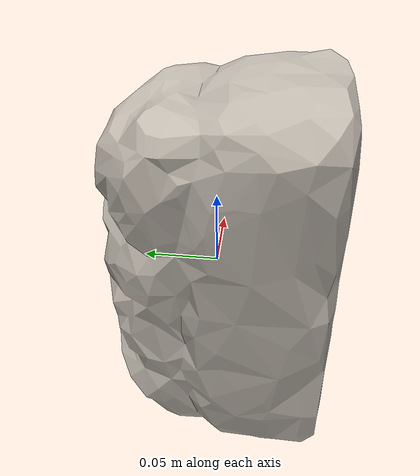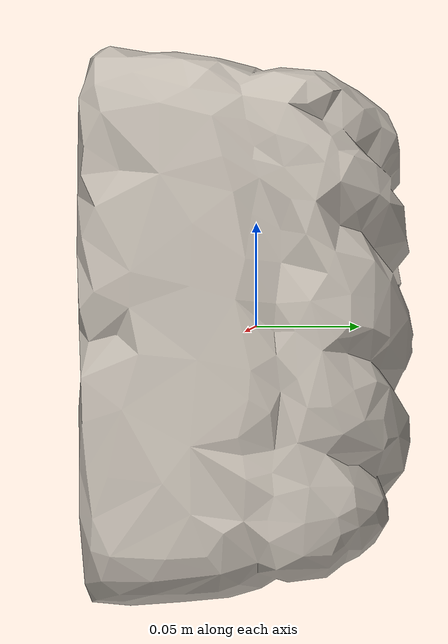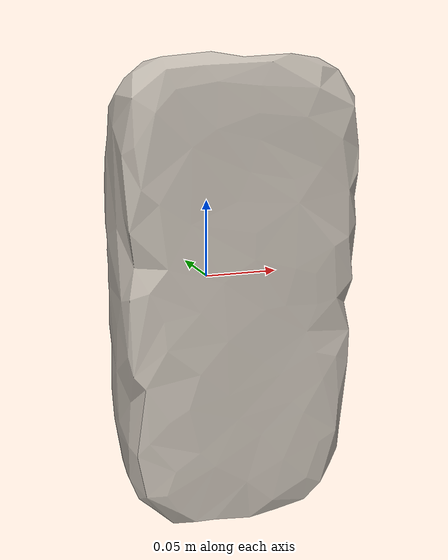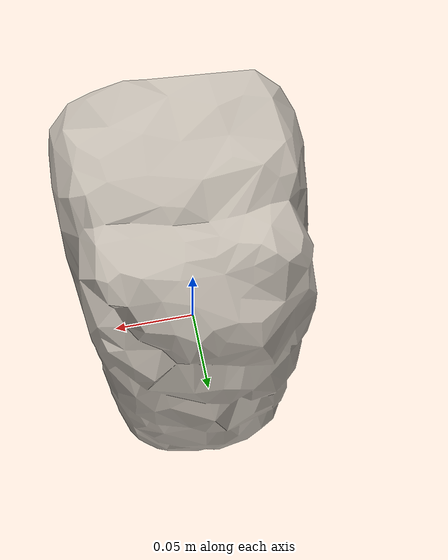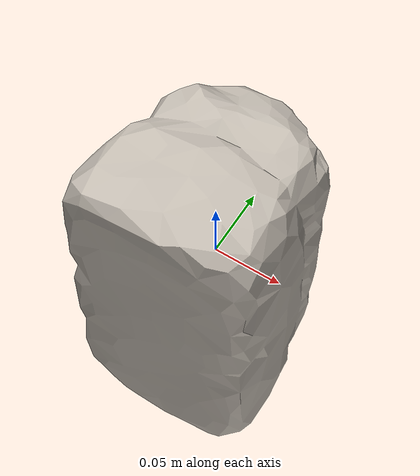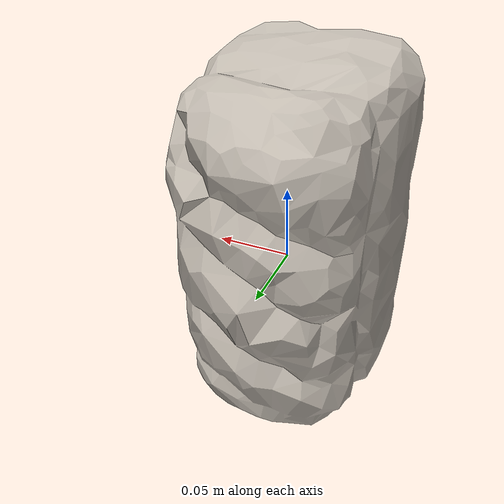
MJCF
<mujoco model="Bread_11">
  <compiler autolimits="true" boundmass="0.01" angle="radian"/>
  <default>
    <default class="/">
      <default class="__VISUAL_MJT__">
        <geom contype="0" conaffinity="0" group="0"/>
      </default>
      <default class="__STRUCTURAL_MJT__">
        <geom contype="8" conaffinity="15" group="4" friction="0.90000000000000002 0.90000000000000002 0.001" solref="0.025000000000000001 1" solimp="0.998 0.998 0.001"/>
      </default>
      <default class="__DYNAMIC_MJT__">
        <geom contype="1" conaffinity="15" group="4" friction="0.90000000000000002 0.90000000000000002 0.001" solref="0.025000000000000001 1" solimp="0.998 0.998 0.001"/>
      </default>
    </default>
  </default>
  <asset>
    <texture name="Bread5_Mat1" type="2d" file="Bread5_AlbedoTransparency.png"/>
    <material name="material_Bread5_Mat1" class="/" texture="Bread5_Mat1" specular="0.5" shininess="0.5" rgba="1 1 1 1"/>
    <mesh name="Bread_11_bread5_a_mesh" class="/" file="Bread_11_bread5_a_mesh/Bread_11_bread5_a_mesh.obj" scale="1 1 1"/>
  </asset>
  <worldbody>
    <body name="Bread_11">
      <joint name="Bread_11_free" class="/" type="free" pos="0 0 0" axis="0 0 1" stiffness="0" range="0 0" armature="0" damping="0.10000000000000001" frictionloss="0"/>
      <body name="Bread_11_bread5_a_mesh" pos="-0 -0.0013799999999999999 0" quat="1 0 0 0">
        <geom name="Bread_11_bread5_a_mesh" class="__VISUAL_MJT__" type="mesh" material="material_Bread5_Mat1" shellinertia="false" mesh="Bread_11_bread5_a_mesh"/>
        <geom name="Bread_11_PrimitiveCollider_0" class="__DYNAMIC_MJT__" type="box" size="0.070378735661506653 0.04299163818359375 0.13394796848297119" rgba="0 1 0 1" pos="-0 -0.035758018493652344 0" quat="1 0 0 0"/>
        <geom name="Bread_11_PrimitiveCollider_1" class="__DYNAMIC_MJT__" type="capsule" size="0.070928528904914856 0.060415461659431458" rgba="0 1 0 1" pos="-0 0.010577082633972168 1.0728836059570312e-06" quat="1.517286444557021e-06 0.99999999999884892 0 0"/>
      </body>
    </body>
  </worldbody>
</mujoco>
